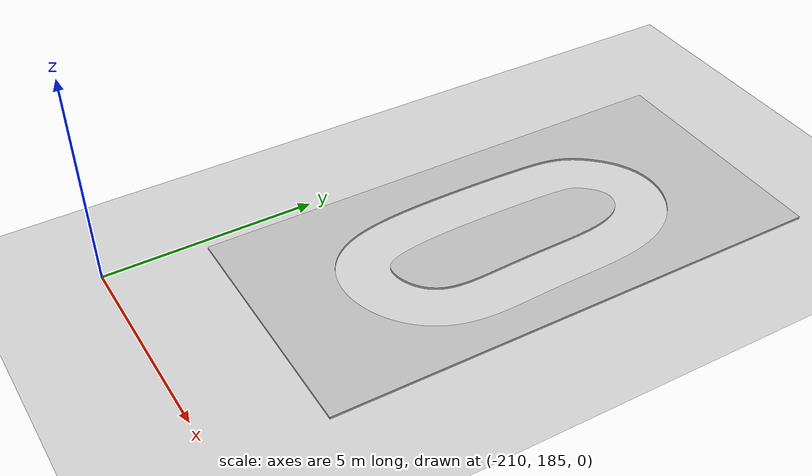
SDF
<sdf version="1.6">
 <world name="default">
  <light name="sun" type="directional">
   <pose>0 0 100 0 -0 0</pose>
   <diffuse>0.8 0.8 0.8 1</diffuse>
   <specular>0.1 0.1 0.1 1</specular>
   <attenuation>
    <range>1000</range>
    <constant>0.9</constant>
    <linear>0.01</linear>
    <quadratic>0.001</quadratic>
   </attenuation>
   <direction>-0.5 0.5 -1</direction>
  </light>
  <model name="ground_plane">
   <static>1</static>
   <link name="link">
    <collision name="collision">
     <geometry><plane><normal>0 0 1</normal><size>100 100</size></plane></geometry>
     <surface><friction><ode><mu>100</mu><mu2>50</mu2></ode></friction></surface>
    </collision>
    <visual name="visual">
     <cast_shadows>0</cast_shadows>
     <geometry><plane><normal>0 0 1</normal><size>100 100</size></plane></geometry>
     <material>
      <script><uri>file://media/materials/scripts/gazebo.material</uri><name>Gazebo/Grey</name></script>
     </material>
    </visual>
   </link>
  </model>
  <gravity>0 0 -9.8</gravity>
  <magnetic_field>6e-06 2.3e-05 -4.2e-05</magnetic_field>
  <atmosphere type="adiabatic"/>
  <physics name="default_physics" default="0" type="ode">
   <max_step_size>0.001</max_step_size>
   <real_time_factor>1</real_time_factor>
   <real_time_update_rate>1000</real_time_update_rate>
  </physics>
  <scene><ambient>0.4 0.4 0.4 1</ambient><background>0.7 0.7 0.7 1</background><shadows>1</shadows></scene>
  <spherical_coordinates>
   <surface_model>EARTH_WGS84</surface_model>
   <latitude_deg>0</latitude_deg>
   <longitude_deg>0</longitude_deg>
   <elevation>0</elevation>
   <heading_deg>0</heading_deg>
  </spherical_coordinates>
  <model name="asphalt_plane">
   <static>1</static>
   <link name="link">
    <collision name="collision"><geometry><box><size>125 125 0.1</size></box></geometry></collision>
    <visual name="visual">
     <cast_shadows>0</cast_shadows>
     <geometry><box><size>125 125 0.1</size></box></geometry>
     <material>
      <script>
       <uri>model://asphalt_plane/materials/scripts</uri>
       <uri>model://asphalt_plane/materials/textures</uri>
       <name>vrc/asphalt</name>
      </script>
     </material>
    </visual>
   </link>
  </model>
  <model name="simple_small_loop">
   <pose>-206.696 193.336 0 0 0 -1.57079</pose>
   <static>1</static>
   <link name="body">
    <collision name="collision">
     <geometry>
      <mesh><uri>model://simple_small_loop/simple_small_loop.stl</uri><scale>1.0 1.0 1.0</scale></mesh>
     </geometry>
     <surface><friction><ode><mu>100</mu><mu2>50</mu2></ode></friction></surface>
    </collision>
    <visual name="visual">
     <geometry>
      <mesh><uri>model://simple_small_loop/simple_small_loop.stl</uri><scale>0.4 0.4 0.0375</scale></mesh>
     </geometry>
    </visual>
   </link>
  </model>
  <audio><device>default</device></audio>
 </world>
</sdf>
